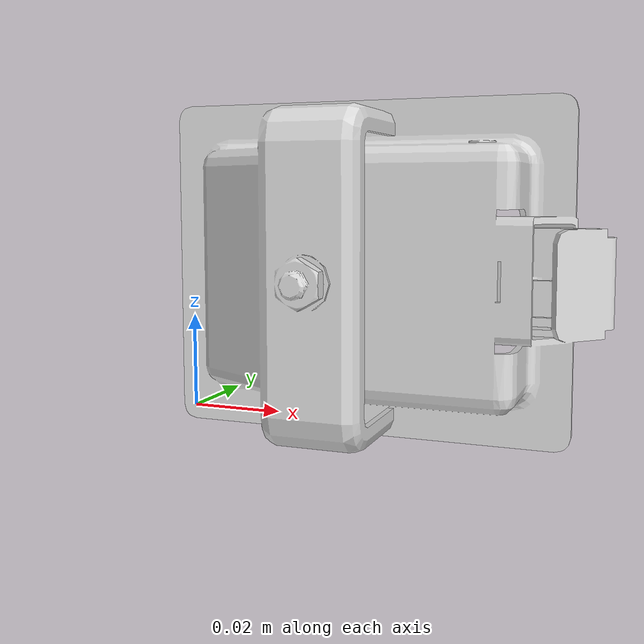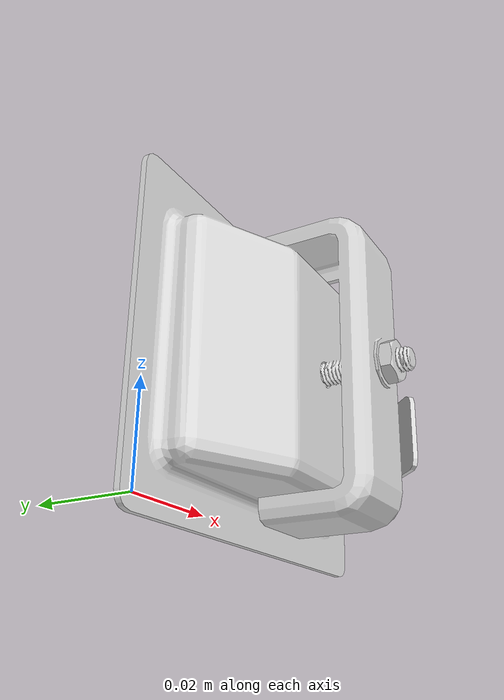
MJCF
<mujoco model="paddle_latch_housing">
  <default>
    <default class="visual">
      <geom group="2" type="mesh" contype="0" conaffinity="0"/>
    </default>
    <default class="collision">
      <geom group="3" type="mesh"/>
    </default>
  </default>
  <asset>
    <material name="mtl_paddle_latch_housing" specular="0.20000000000000004" shininess="1.0" rgba="0.85098039 0.85098039 0.85098039 1.0"/>
    <mesh file="paddle_latch_housing.obj"/>
  </asset>
  <worldbody>
    <body name="paddle_latch_housing">
      <geom material="mtl_paddle_latch_housing" mesh="paddle_latch_housing" class="visual"/>
      <geom mesh="paddle_latch_housing" class="collision"/>
    </body>
  </worldbody>
</mujoco>
